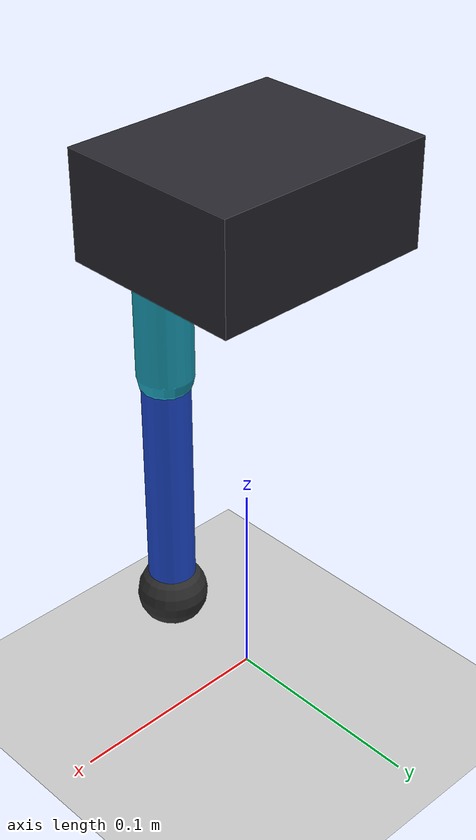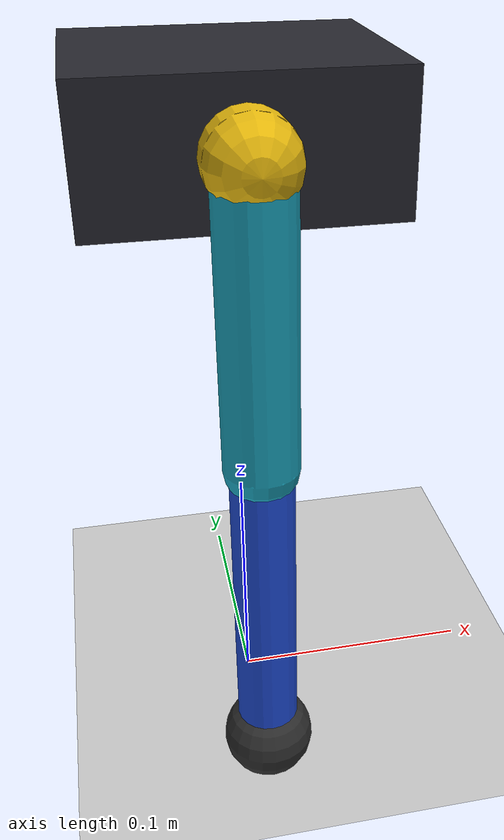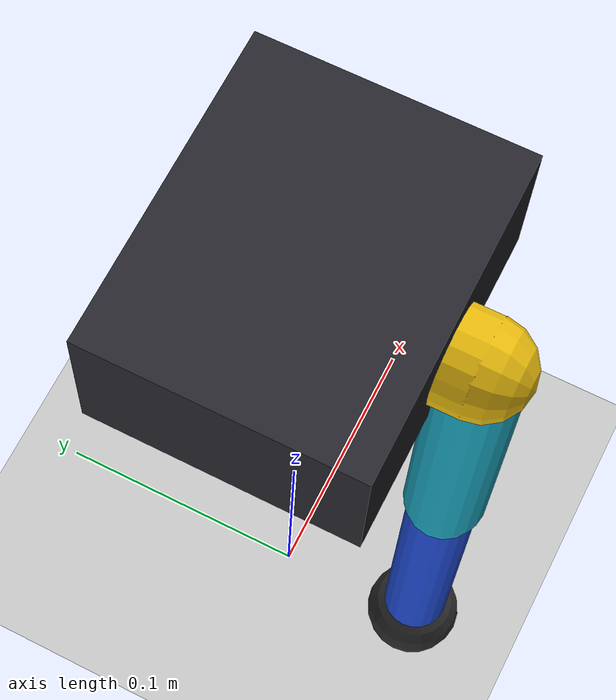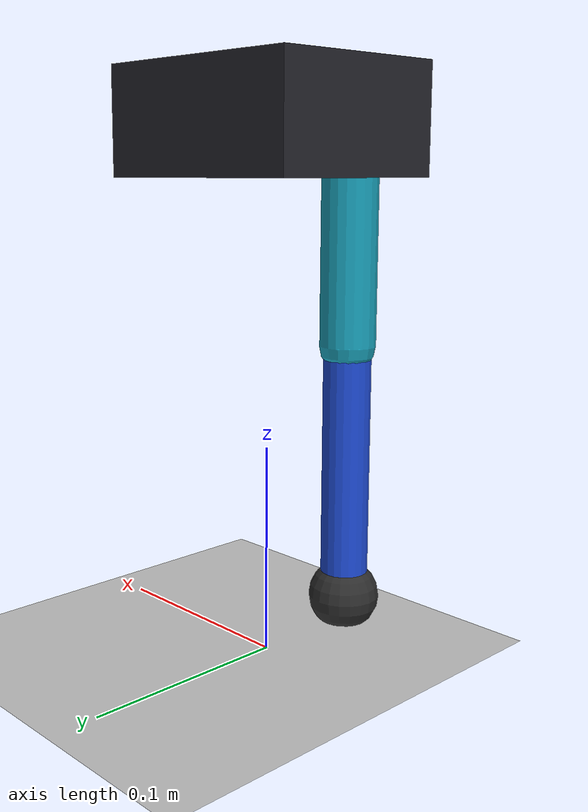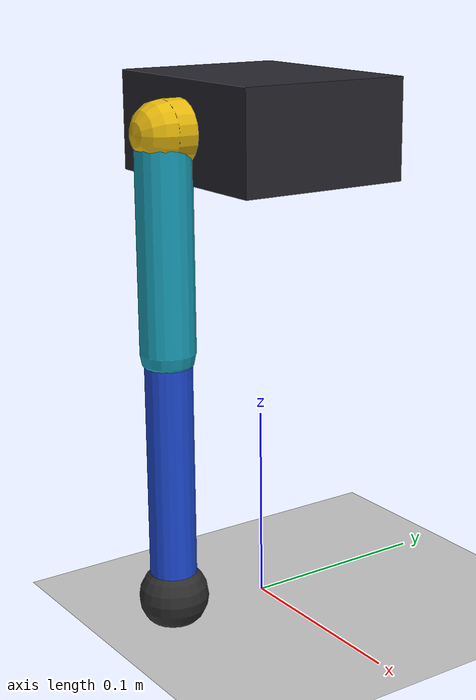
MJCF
<mujoco model="spotmicro_one_right_leg_test_rig">
  <compiler angle="radian" autolimits="true"/>
  <option timestep="0.002" gravity="0 0 -9.81" integrator="implicitfast">
    <flag warmstart="enable"/>
  </option>

  <default>
    <joint damping="0.12" armature="0.002"/>
    <geom friction="1.0 0.02 0.002" condim="4"/>
  </default>

  <visual>
    <headlight diffuse="0.7 0.7 0.7" ambient="0.3 0.3 0.3"/>
  </visual>

  <asset>
    <texture name="grid" type="2d" builtin="checker"
             rgb1="0.88 0.88 0.88" rgb2="0.68 0.68 0.68"
             width="512" height="512"/>
    <material name="floor_mat" texture="grid" texrepeat="8 8" reflectance="0.08"/>
  </asset>

  <worldbody>
    <light pos="0 -1 2" dir="0 0 -1"/>
    <geom name="floor" type="plane" size="2 2 0.1" material="floor_mat"/>

    <!--
      A mocap carriage represents a rigid physical test fixture. The script
      moves it slowly to disturb the leg without pretending one foot can
      balance an unconstrained body.
    -->
    <body name="test_carriage" mocap="true" pos="0 0 0.250">
      <geom name="carriage" type="box" size="0.055 0.045 0.025"
            rgba="0.15 0.15 0.18 1" contype="0" conaffinity="0"/>

      <!-- Use Cometyang/Mike front-right names so joint-state data can be
           consumed by the existing SpotMicro URDF/RViz pipeline. -->
      <body name="front_right_shoulder_link" pos="0 0 0">
        <joint name="front_right_shoulder" axis="1 0 0" range="-0.55 0.55"/>
        <geom type="capsule" fromto="0 0 0 0 -0.055 0" size="0.016"
              mass="0.12" rgba="0.90 0.72 0.05 1"/>

        <body name="front_right_leg_link" pos="0 -0.055 0">
          <joint name="front_right_leg" axis="0 1 0" range="-1.50 1.00"/>
          <geom type="capsule" fromto="0 0 0 0 0 -0.1075" size="0.014"
                mass="0.18" rgba="0.10 0.65 0.75 1"/>

          <body name="front_right_foot_link" pos="0 0 -0.1075">
            <joint name="front_right_foot" axis="0 1 0" range="-2.40 -0.05"/>
            <geom type="capsule" fromto="0 0 0 0 0 -0.130" size="0.012"
                  mass="0.16" rgba="0.12 0.30 0.85 1"/>
            <geom name="right_toe" type="sphere" pos="0 0 -0.130" size="0.018"
                  mass="0.035" rgba="0.18 0.18 0.18 1"/>
            <site name="right_toe_site" pos="0 0 -0.130" size="0.006"
                  rgba="1 0.15 0.15 1"/>
          </body>
        </body>
      </body>
    </body>
  </worldbody>

  <!-- Position servos approximate the closed-loop behavior of hobby servos. -->
  <actuator>
    <position name="front_right_shoulder_actuator" joint="front_right_shoulder"
              kp="45" kv="3.5" ctrlrange="-0.55 0.55" forcerange="-3.0 3.0"/>
    <position name="front_right_leg_actuator" joint="front_right_leg"
              kp="55" kv="4.0" ctrlrange="-1.50 1.00" forcerange="-4.0 4.0"/>
    <position name="front_right_foot_actuator" joint="front_right_foot"
              kp="45" kv="3.5" ctrlrange="-2.40 -0.05" forcerange="-3.5 3.5"/>
  </actuator>

  <keyframe>
    <key name="stance" qpos="0 0.25 -0.50" ctrl="0 0.25 -0.50"/>
  </keyframe>
</mujoco>
